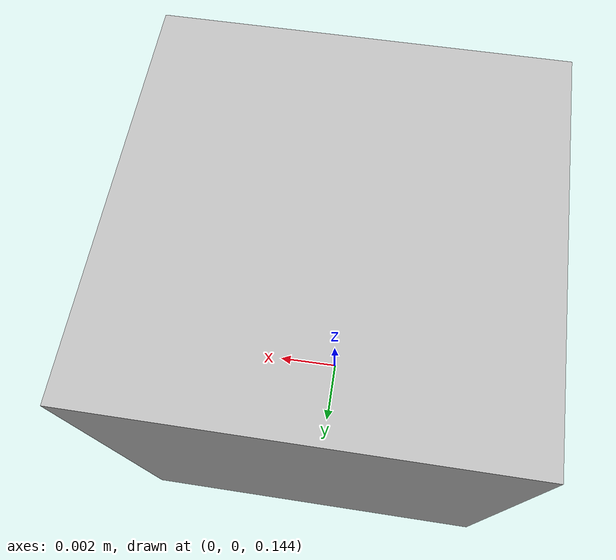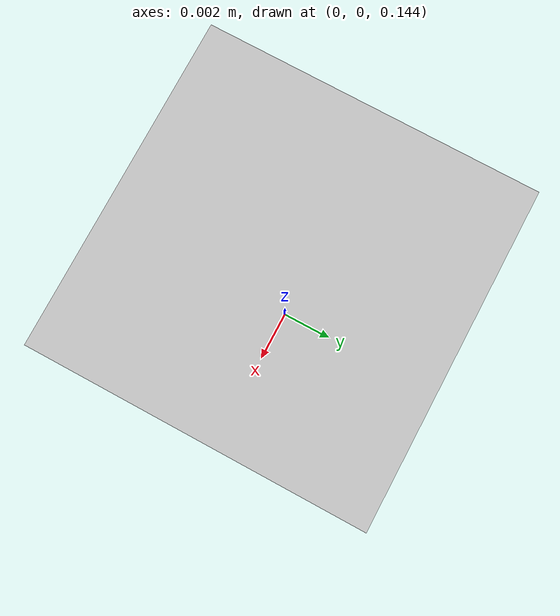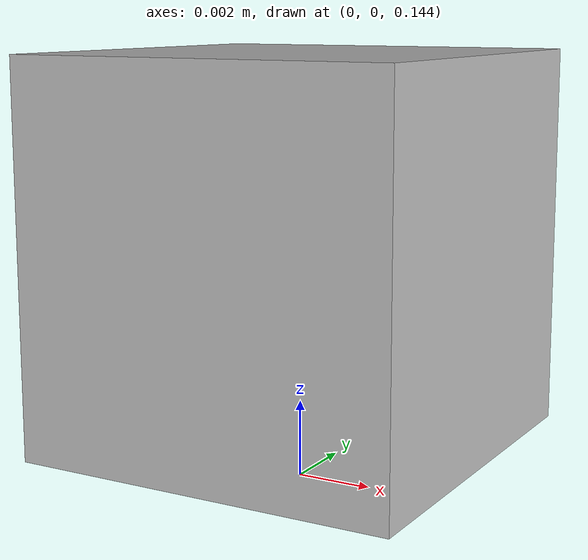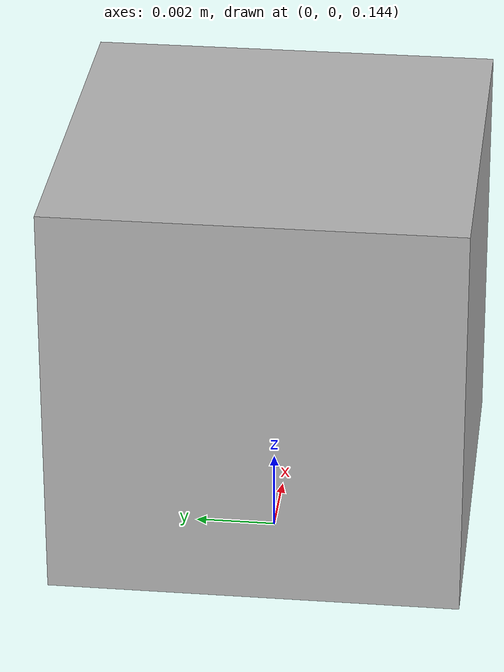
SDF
<?xml version='1.0'?>
<sdf version='1.6'>
  <model name='downward_camera'>
  <pose>0 0 0.15 0 1.57 0</pose>
    <link name='link'>
      <inertial>
        <mass>0.015</mass>
        <inertia>
          <ixx>4.15e-6</ixx>
          <ixy>0</ixy>
          <ixz>0</ixz>
          <iyy>2.407e-6</iyy>
          <iyz>0</iyz>
          <izz>2.407e-6</izz>
        </inertia>
      </inertial>
      <collision name='collision'>
        <geometry>
          <box>
            <size>0.01 0.01 0.01</size>
          </box>
        </geometry>
        <max_contacts>10</max_contacts>
        <surface>
          <contact>
            <ode/>
          </contact>
          <bounce/>
          <friction>
            <ode/>
          </friction>
        </surface>
      </collision>
      <visual name='visual'>
        <geometry>
          <box>
            <size>0.01 0.01 0.01</size>
          </box>
        </geometry>
      </visual>
      <sensor name='camera' type='camera'>
        <camera name='__default__'>
          <horizontal_fov>1.047</horizontal_fov>
          <image>
            <width>320</width>
            <height>240</height>
          </image>
          <clip>
            <near>0.1</near>
            <far>100</far>
          </clip>
          <lens>
            <type>custom</type>
            <custom_function>
              <c1>1.05</c1>
              <c2>4</c2>
              <f>1</f>
              <fun>tan</fun>
            </custom_function>
            <scale_to_hfov>1</scale_to_hfov>
            <cutoff_angle>3.1415</cutoff_angle>
            <env_texture_size>1080</env_texture_size>
          </lens>
        </camera>
        <always_on>1</always_on>
        <update_rate>30</update_rate>
        <visualize>1</visualize>
        <topic>camera</topic>
          <!-- GStreamer camera plugin (needs a lot of CPU! Consider lowering the
             camera image size) -->
      </sensor>
      <self_collide>0</self_collide>
      <kinematic>0</kinematic>
    </link>
  </model>
</sdf>
